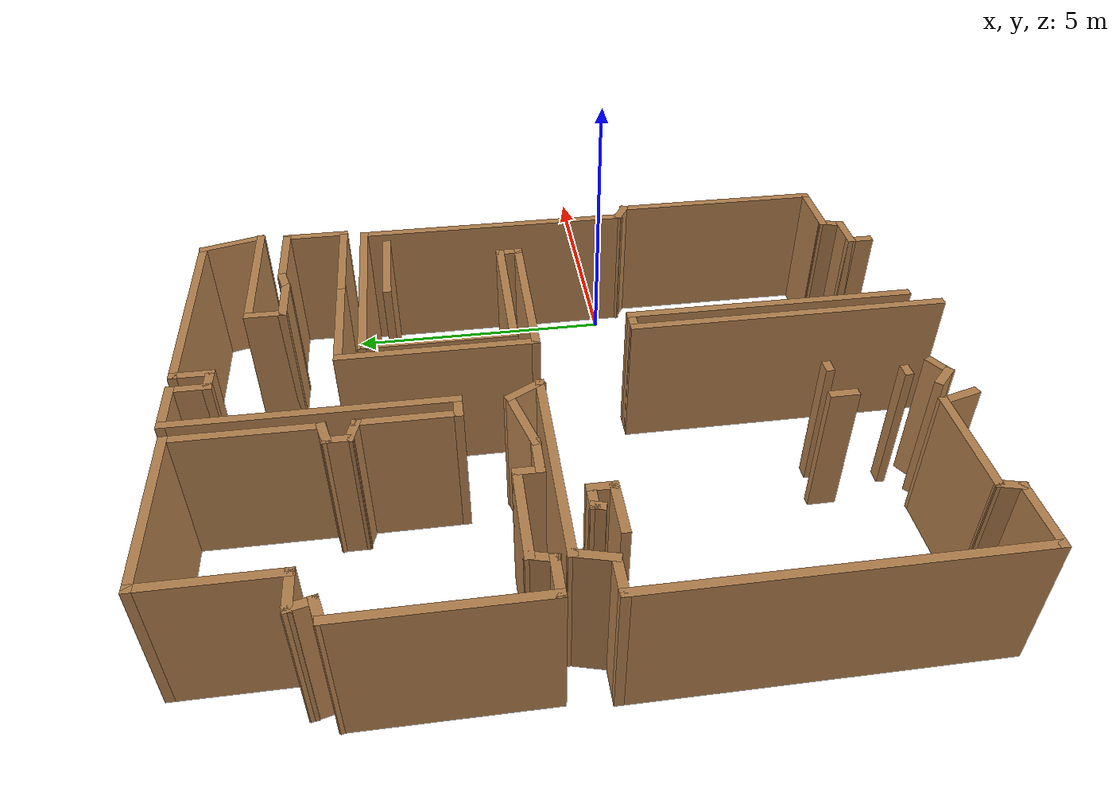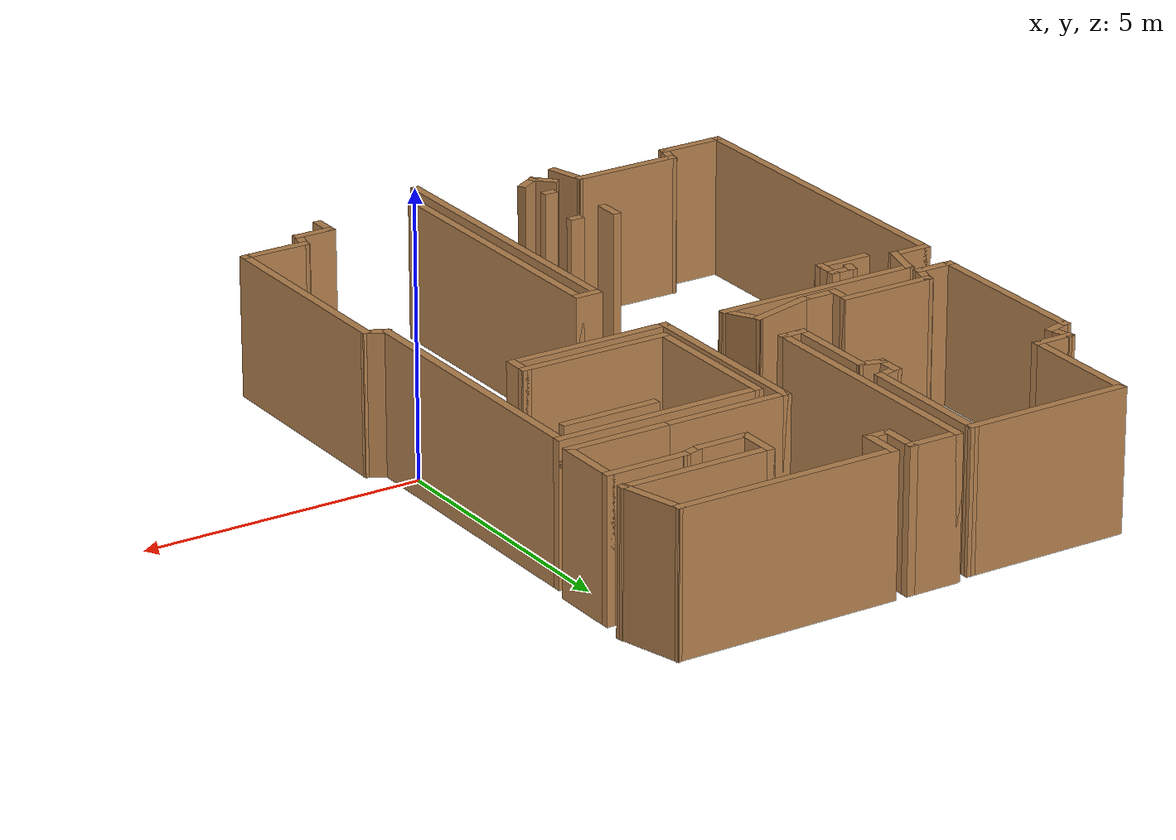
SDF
<sdf version="1.6">
 <model name="map_31">
  <pose>-4.20908 -1.66774 0 0 -0 0</pose>
  <link name="Wall_0">
   <collision name="Wall_0_Collision">
    <geometry><box><size>3 0.15 2.5</size></box></geometry>
    <pose>0 0 1.25 0 -0 0</pose>
   </collision>
   <visual name="Wall_0_Visual">
    <pose>0 0 1.25 0 -0 0</pose>
    <geometry><box><size>3 0.15 2.5</size></box></geometry>
    <material>
     <script><uri>file://media/materials/scripts/gazebo.material</uri><name>Gazebo/Wood</name></script>
     <ambient>1 1 1 1</ambient>
    </material>
    <meta><layer>0</layer></meta>
   </visual>
   <pose>-2.44947 9.31 0 0 -0 3.14159</pose>
  </link>
  <link name="Wall_1">
   <collision name="Wall_1_Collision">
    <geometry><box><size>2.25 0.15 2.5</size></box></geometry>
    <pose>0 0 1.25 0 -0 0</pose>
   </collision>
   <visual name="Wall_1_Visual">
    <pose>0 0 1.25 0 -0 0</pose>
    <geometry><box><size>2.25 0.15 2.5</size></box></geometry>
    <material>
     <script><uri>file://media/materials/scripts/gazebo.material</uri><name>Gazebo/Wood</name></script>
     <ambient>1 1 1 1</ambient>
    </material>
    <meta><layer>0</layer></meta>
   </visual>
   <pose>-3.87447 8.26 0 0 -0 -1.5708</pose>
  </link>
  <link name="Wall_10">
   <collision name="Wall_10_Collision">
    <geometry><box><size>0.75 0.15 2.5</size></box></geometry>
    <pose>0 0 1.25 0 -0 0</pose>
   </collision>
   <visual name="Wall_10_Visual">
    <pose>0 0 1.25 0 -0 0</pose>
    <geometry><box><size>0.75 0.15 2.5</size></box></geometry>
    <material>
     <script><uri>file://media/materials/scripts/gazebo.material</uri><name>Gazebo/Wood</name></script>
     <ambient>1 1 1 1</ambient>
    </material>
    <meta><layer>0</layer></meta>
   </visual>
   <pose>-2.13137 3.66941 0 0 -0 0</pose>
  </link>
  <link name="Wall_100">
   <collision name="Wall_100_Collision">
    <geometry><box><size>3.5 0.15 2.5</size></box></geometry>
    <pose>0 0 1.25 0 -0 0</pose>
   </collision>
   <visual name="Wall_100_Visual">
    <pose>0 0 1.25 0 -0 0</pose>
    <geometry><box><size>3.5 0.15 2.5</size></box></geometry>
    <material>
     <script><uri>file://media/materials/scripts/gazebo.material</uri><name>Gazebo/Wood</name></script>
     <ambient>1 1 1 1</ambient>
    </material>
    <meta><layer>0</layer></meta>
   </visual>
   <pose>0.643586 5.04256 0 0 -0 1.5708</pose>
  </link>
  <link name="Wall_101">
   <collision name="Wall_101_Collision">
    <geometry><box><size>2.25 0.15 2.5</size></box></geometry>
    <pose>0 0 1.25 0 -0 0</pose>
   </collision>
   <visual name="Wall_101_Visual">
    <pose>0 0 1.25 0 -0 0</pose>
    <geometry><box><size>2.25 0.15 2.5</size></box></geometry>
    <material>
     <script><uri>file://media/materials/scripts/gazebo.material</uri><name>Gazebo/Wood</name></script>
     <ambient>1 1 1 1</ambient>
    </material>
    <meta><layer>0</layer></meta>
   </visual>
   <pose>1.69359 6.71756 0 0 -0 0</pose>
  </link>
  <link name="Wall_102">
   <collision name="Wall_102_Collision">
    <geometry><box><size>2 0.15 2.5</size></box></geometry>
    <pose>0 0 1.25 0 -0 0</pose>
   </collision>
   <visual name="Wall_102_Visual">
    <pose>0 0 1.25 0 -0 0</pose>
    <geometry><box><size>2 0.15 2.5</size></box></geometry>
    <material>
     <script><uri>file://media/materials/scripts/gazebo.material</uri><name>Gazebo/Wood</name></script>
     <ambient>1 1 1 1</ambient>
    </material>
    <meta><layer>0</layer></meta>
   </visual>
   <pose>3.66859 6.71756 0 0 -0 0</pose>
  </link>
  <link name="Wall_103">
   <collision name="Wall_103_Collision">
    <geometry><box><size>1.25 0.15 2.5</size></box></geometry>
    <pose>0 0 1.25 0 -0 0</pose>
   </collision>
   <visual name="Wall_103_Visual">
    <pose>0 0 1.25 0 -0 0</pose>
    <geometry><box><size>1.25 0.15 2.5</size></box></geometry>
    <material>
     <script><uri>file://media/materials/scripts/gazebo.material</uri><name>Gazebo/Wood</name></script>
     <ambient>1 1 1 1</ambient>
    </material>
    <meta><layer>0</layer></meta>
   </visual>
   <pose>4.59359 7.26756 0 0 -0 1.5708</pose>
  </link>
  <link name="Wall_104">
   <collision name="Wall_104_Collision">
    <geometry><box><size>1.5 0.15 2.5</size></box></geometry>
    <pose>0 0 1.25 0 -0 0</pose>
   </collision>
   <visual name="Wall_104_Visual">
    <pose>0 0 1.25 0 -0 0</pose>
    <geometry><box><size>1.5 0.15 2.5</size></box></geometry>
    <material>
     <script><uri>file://media/materials/scripts/gazebo.material</uri><name>Gazebo/Wood</name></script>
     <ambient>1 1 1 1</ambient>
    </material>
    <meta><layer>0</layer></meta>
   </visual>
   <pose>3.91859 7.81756 0 0 -0 3.14159</pose>
  </link>
  <link name="Wall_105">
   <collision name="Wall_105_Collision">
    <geometry><box><size>0.5 0.15 2.5</size></box></geometry>
    <pose>0 0 1.25 0 -0 0</pose>
   </collision>
   <visual name="Wall_105_Visual">
    <pose>0 0 1.25 0 -0 0</pose>
    <geometry><box><size>0.5 0.15 2.5</size></box></geometry>
    <material>
     <script><uri>file://media/materials/scripts/gazebo.material</uri><name>Gazebo/Wood</name></script>
     <ambient>1 1 1 1</ambient>
    </material>
    <meta><layer>0</layer></meta>
   </visual>
   <pose>3.07455 7.77226 0 0 -0 -2.87979</pose>
  </link>
  <link name="Wall_106">
   <collision name="Wall_106_Collision">
    <geometry><box><size>1 0.15 2.5</size></box></geometry>
    <pose>0 0 1.25 0 -0 0</pose>
   </collision>
   <visual name="Wall_106_Visual">
    <pose>0 0 1.25 0 -0 0</pose>
    <geometry><box><size>1 0.15 2.5</size></box></geometry>
    <material>
     <script><uri>file://media/materials/scripts/gazebo.material</uri><name>Gazebo/Wood</name></script>
     <ambient>1 1 1 1</ambient>
    </material>
    <meta><layer>0</layer></meta>
   </visual>
   <pose>2.48051 7.72697 0 0 -0 3.14159</pose>
  </link>
  <link name="Wall_107">
   <collision name="Wall_107_Collision">
    <geometry><box><size>0.75 0.15 2.5</size></box></geometry>
    <pose>0 0 1.25 0 -0 0</pose>
   </collision>
   <visual name="Wall_107_Visual">
    <pose>0 0 1.25 0 -0 0</pose>
    <geometry><box><size>0.75 0.15 2.5</size></box></geometry>
    <material>
     <script><uri>file://media/materials/scripts/gazebo.material</uri><name>Gazebo/Wood</name></script>
     <ambient>1 1 1 1</ambient>
    </material>
    <meta><layer>0</layer></meta>
   </visual>
   <pose>2.05551 8.02697 0 0 -0 1.5708</pose>
  </link>
  <link name="Wall_108">
   <collision name="Wall_108_Collision">
    <geometry><box><size>2.75 0.15 2.5</size></box></geometry>
    <pose>0 0 1.25 0 -0 0</pose>
   </collision>
   <visual name="Wall_108_Visual">
    <pose>0 0 1.25 0 -0 0</pose>
    <geometry><box><size>2.75 0.15 2.5</size></box></geometry>
    <material>
     <script><uri>file://media/materials/scripts/gazebo.material</uri><name>Gazebo/Wood</name></script>
     <ambient>1 1 1 1</ambient>
    </material>
    <meta><layer>0</layer></meta>
   </visual>
   <pose>3.35551 8.32697 0 0 -0 0</pose>
  </link>
  <link name="Wall_109">
   <collision name="Wall_109_Collision">
    <geometry><box><size>1.25 0.15 2.5</size></box></geometry>
    <pose>0 0 1.25 0 -0 0</pose>
   </collision>
   <visual name="Wall_109_Visual">
    <pose>0 0 1.25 0 -0 0</pose>
    <geometry><box><size>1.25 0.15 2.5</size></box></geometry>
    <material>
     <script><uri>file://media/materials/scripts/gazebo.material</uri><name>Gazebo/Wood</name></script>
     <ambient>1 1 1 1</ambient>
    </material>
    <meta><layer>0</layer></meta>
   </visual>
   <pose>4.51316 8.85823 0 0 -0 1.8326</pose>
  </link>
  <link name="Wall_11">
   <collision name="Wall_11_Collision">
    <geometry><box><size>1.25 0.15 2.5</size></box></geometry>
    <pose>0 0 1.25 0 -0 0</pose>
   </collision>
   <visual name="Wall_11_Visual">
    <pose>0 0 1.25 0 -0 0</pose>
    <geometry><box><size>1.25 0.15 2.5</size></box></geometry>
    <material>
     <script><uri>file://media/materials/scripts/gazebo.material</uri><name>Gazebo/Wood</name></script>
     <ambient>1 1 1 1</ambient>
    </material>
    <meta><layer>0</layer></meta>
   </visual>
   <pose>-1.30011 3.81176 0 0 -0 0.261799</pose>
  </link>
  <link name="Wall_110">
   <collision name="Wall_110_Collision">
    <geometry><box><size>4 0.15 2.5</size></box></geometry>
    <pose>0 0 1.25 0 -0 0</pose>
   </collision>
   <visual name="Wall_110_Visual">
    <pose>0 0 1.25 0 -0 0</pose>
    <geometry><box><size>4 0.15 2.5</size></box></geometry>
    <material>
     <script><uri>file://media/materials/scripts/gazebo.material</uri><name>Gazebo/Wood</name></script>
     <ambient>1 1 1 1</ambient>
    </material>
    <meta><layer>0</layer></meta>
   </visual>
   <pose>2.44581 9.38949 0 0 -0 3.14159</pose>
  </link>
  <link name="Wall_111">
   <collision name="Wall_111_Collision">
    <geometry><box><size>0.75 0.15 2.5</size></box></geometry>
    <pose>0 0 1.25 0 -0 0</pose>
   </collision>
   <visual name="Wall_111_Visual">
    <pose>0 0 1.25 0 -0 0</pose>
    <geometry><box><size>0.75 0.15 2.5</size></box></geometry>
    <material>
     <script><uri>file://media/materials/scripts/gazebo.material</uri><name>Gazebo/Wood</name></script>
     <ambient>1 1 1 1</ambient>
    </material>
    <meta><layer>0</layer></meta>
   </visual>
   <pose>0.520811 9.08949 0 0 -0 -1.5708</pose>
  </link>
  <link name="Wall_112">
   <collision name="Wall_112_Collision">
    <geometry><box><size>0.5 0.15 2.5</size></box></geometry>
    <pose>0 0 1.25 0 -0 0</pose>
   </collision>
   <visual name="Wall_112_Visual">
    <pose>0 0 1.25 0 -0 0</pose>
    <geometry><box><size>0.5 0.15 2.5</size></box></geometry>
    <material>
     <script><uri>file://media/materials/scripts/gazebo.material</uri><name>Gazebo/Wood</name></script>
     <ambient>1 1 1 1</ambient>
    </material>
    <meta><layer>0</layer></meta>
   </visual>
   <pose>0.345811 8.78949 0 0 -0 3.14159</pose>
  </link>
  <link name="Wall_113">
   <collision name="Wall_113_Collision">
    <geometry><box><size>0.75 0.15 2.5</size></box></geometry>
    <pose>0 0 1.25 0 -0 0</pose>
   </collision>
   <visual name="Wall_113_Visual">
    <pose>0 0 1.25 0 -0 0</pose>
    <geometry><box><size>0.75 0.15 2.5</size></box></geometry>
    <material>
     <script><uri>file://media/materials/scripts/gazebo.material</uri><name>Gazebo/Wood</name></script>
     <ambient>1 1 1 1</ambient>
    </material>
    <meta><layer>0</layer></meta>
   </visual>
   <pose>0.170811 9.08949 0 0 -0 1.5708</pose>
  </link>
  <link name="Wall_116">
   <collision name="Wall_116_Collision">
    <geometry><box><size>1 0.15 2.5</size></box></geometry>
    <pose>0 0 1.25 0 -0 0</pose>
   </collision>
   <visual name="Wall_116_Visual">
    <pose>0 0 1.25 0 -0 0</pose>
    <geometry><box><size>1 0.15 2.5</size></box></geometry>
    <material>
     <script><uri>file://media/materials/scripts/gazebo.material</uri><name>Gazebo/Wood</name></script>
     <ambient>1 1 1 1</ambient>
    </material>
    <meta><layer>0</layer></meta>
   </visual>
   <pose>-0.254189 9.38949 0 0 -0 3.14159</pose>
  </link>
  <link name="Wall_117">
   <collision name="Wall_117_Collision">
    <geometry><box><size>4.75 0.15 2.5</size></box></geometry>
    <pose>0 0 1.25 0 -0 0</pose>
   </collision>
   <visual name="Wall_117_Visual">
    <pose>0 0 1.25 0 -0 0</pose>
    <geometry><box><size>4.75 0.15 2.5</size></box></geometry>
    <material>
     <script><uri>file://media/materials/scripts/gazebo.material</uri><name>Gazebo/Wood</name></script>
     <ambient>1 1 1 1</ambient>
    </material>
    <meta><layer>0</layer></meta>
   </visual>
   <pose>-0.679188 7.08949 0 0 -0 -1.5708</pose>
  </link>
  <link name="Wall_12">
   <collision name="Wall_12_Collision">
    <geometry><box><size>0.75 0.15 2.5</size></box></geometry>
    <pose>0 0 1.25 0 -0 0</pose>
   </collision>
   <visual name="Wall_12_Visual">
    <pose>0 0 1.25 0 -0 0</pose>
    <geometry><box><size>0.75 0.15 2.5</size></box></geometry>
    <material>
     <script><uri>file://media/materials/scripts/gazebo.material</uri><name>Gazebo/Wood</name></script>
     <ambient>1 1 1 1</ambient>
    </material>
    <meta><layer>0</layer></meta>
   </visual>
   <pose>-0.618855 3.6943 0 0 -0 -1.0472</pose>
  </link>
  <link name="Wall_120">
   <collision name="Wall_120_Collision">
    <geometry><box><size>0.5 0.15 2.5</size></box></geometry>
    <pose>0 0 1.25 0 -0 0</pose>
   </collision>
   <visual name="Wall_120_Visual">
    <pose>0 0 1.25 0 -0 0</pose>
    <geometry><box><size>0.5 0.15 2.5</size></box></geometry>
    <material>
     <script><uri>file://media/materials/scripts/gazebo.material</uri><name>Gazebo/Wood</name></script>
     <ambient>1 1 1 1</ambient>
    </material>
    <meta><layer>0</layer></meta>
   </visual>
   <pose>-0.854189 4.78949 0 0 -0 3.14159</pose>
  </link>
  <link name="Wall_124">
   <collision name="Wall_124_Collision">
    <geometry><box><size>1.75 0.15 2.5</size></box></geometry>
    <pose>0 0 1.25 0 -0 0</pose>
   </collision>
   <visual name="Wall_124_Visual">
    <pose>0 0 1.25 0 -0 0</pose>
    <geometry><box><size>1.75 0.15 2.5</size></box></geometry>
    <material>
     <script><uri>file://media/materials/scripts/gazebo.material</uri><name>Gazebo/Wood</name></script>
     <ambient>1 1 1 1</ambient>
    </material>
    <meta><layer>0</layer></meta>
   </visual>
   <pose>-1.02919 5.58949 0 0 -0 1.5708</pose>
  </link>
  <link name="Wall_125">
   <collision name="Wall_125_Collision">
    <geometry><box><size>0.5 0.15 2.5</size></box></geometry>
    <pose>0 0 1.25 0 -0 0</pose>
   </collision>
   <visual name="Wall_125_Visual">
    <pose>0 0 1.25 0 -0 0</pose>
    <geometry><box><size>0.5 0.15 2.5</size></box></geometry>
    <material>
     <script><uri>file://media/materials/scripts/gazebo.material</uri><name>Gazebo/Wood</name></script>
     <ambient>1 1 1 1</ambient>
    </material>
    <meta><layer>0</layer></meta>
   </visual>
   <pose>-1.19823 6.43478 0 0 -0 2.87979</pose>
  </link>
  <link name="Wall_126">
   <collision name="Wall_126_Collision">
    <geometry><box><size>0.5 0.15 2.5</size></box></geometry>
    <pose>0 0 1.25 0 -0 0</pose>
   </collision>
   <visual name="Wall_126_Visual">
    <pose>0 0 1.25 0 -0 0</pose>
    <geometry><box><size>0.5 0.15 2.5</size></box></geometry>
    <material>
     <script><uri>file://media/materials/scripts/gazebo.material</uri><name>Gazebo/Wood</name></script>
     <ambient>1 1 1 1</ambient>
    </material>
    <meta><layer>0</layer></meta>
   </visual>
   <pose>-1.36726 6.65508 0 0 -0 1.5708</pose>
  </link>
  <link name="Wall_127">
   <collision name="Wall_127_Collision">
    <geometry><box><size>0.5 0.15 2.5</size></box></geometry>
    <pose>0 0 1.25 0 -0 0</pose>
   </collision>
   <visual name="Wall_127_Visual">
    <pose>0 0 1.25 0 -0 0</pose>
    <geometry><box><size>0.5 0.15 2.5</size></box></geometry>
    <material>
     <script><uri>file://media/materials/scripts/gazebo.material</uri><name>Gazebo/Wood</name></script>
     <ambient>1 1 1 1</ambient>
    </material>
    <meta><layer>0</layer></meta>
   </visual>
   <pose>-1.19823 6.87537 0 0 -0 0.261799</pose>
  </link>
  <link name="Wall_128">
   <collision name="Wall_128_Collision">
    <geometry><box><size>2.53934 0.15 2.5</size></box></geometry>
    <pose>0 0 1.25 0 -0 0</pose>
   </collision>
   <visual name="Wall_128_Visual">
    <pose>0 0 1.25 0 -0 0</pose>
    <geometry><box><size>2.53934 0.15 2.5</size></box></geometry>
    <material>
     <script><uri>file://media/materials/scripts/gazebo.material</uri><name>Gazebo/Wood</name></script>
     <ambient>1 1 1 1</ambient>
    </material>
    <meta><layer>0</layer></meta>
   </visual>
   <pose>-1.02683 8.11533 0 0 -0 1.56882</pose>
  </link>
  <link name="Wall_13">
   <collision name="Wall_13_Collision">
    <geometry><box><size>3.75 0.15 2.5</size></box></geometry>
    <pose>0 0 1.25 0 -0 0</pose>
   </collision>
   <visual name="Wall_13_Visual">
    <pose>0 0 1.25 0 -0 0</pose>
    <geometry><box><size>3.75 0.15 2.5</size></box></geometry>
    <material>
     <script><uri>file://media/materials/scripts/gazebo.material</uri><name>Gazebo/Wood</name></script>
     <ambient>1 1 1 1</ambient>
    </material>
    <meta><layer>0</layer></meta>
   </visual>
   <pose>-2.26885 3.4345 0 0 -0 3.14159</pose>
  </link>
  <link name="Wall_130">
   <collision name="Wall_130_Collision">
    <geometry><box><size>1.75 0.15 2.5</size></box></geometry>
    <pose>0 0 1.25 0 -0 0</pose>
   </collision>
   <visual name="Wall_130_Visual">
    <pose>0 0 1.25 0 -0 0</pose>
    <geometry><box><size>1.75 0.15 2.5</size></box></geometry>
    <material>
     <script><uri>file://media/materials/scripts/gazebo.material</uri><name>Gazebo/Wood</name></script>
     <ambient>1 1 1 1</ambient>
    </material>
    <meta><layer>0</layer></meta>
   </visual>
   <pose>3.32399 5.88389 0 0 -0 0</pose>
  </link>
  <link name="Wall_132">
   <collision name="Wall_132_Collision">
    <geometry><box><size>0.5 0.15 2.5</size></box></geometry>
    <pose>0 0 1.25 0 -0 0</pose>
   </collision>
   <visual name="Wall_132_Visual">
    <pose>0 0 1.25 0 -0 0</pose>
    <geometry><box><size>0.5 0.15 2.5</size></box></geometry>
    <material>
     <script><uri>file://media/materials/scripts/gazebo.material</uri><name>Gazebo/Wood</name></script>
     <ambient>1 1 1 1</ambient>
    </material>
    <meta><layer>0</layer></meta>
   </visual>
   <pose>-1.39156 -1.38804 0 0 -0 -1.5708</pose>
  </link>
  <link name="Wall_134">
   <collision name="Wall_134_Collision">
    <geometry><box><size>0.25 0.15 2.5</size></box></geometry>
    <pose>0 0 1.25 0 -0 0</pose>
   </collision>
   <visual name="Wall_134_Visual">
    <pose>0 0 1.25 0 -0 0</pose>
    <geometry><box><size>0.25 0.15 2.5</size></box></geometry>
    <material>
     <script><uri>file://media/materials/scripts/gazebo.material</uri><name>Gazebo/Wood</name></script>
     <ambient>1 1 1 1</ambient>
    </material>
    <meta><layer>0</layer></meta>
   </visual>
   <pose>-0.699161 -1.36599 0 0 -0 0</pose>
  </link>
  <link name="Wall_136">
   <collision name="Wall_136_Collision">
    <geometry><box><size>0.25 0.15 2.5</size></box></geometry>
    <pose>0 0 1.25 0 -0 0</pose>
   </collision>
   <visual name="Wall_136_Visual">
    <pose>0 0 1.25 0 -0 0</pose>
    <geometry><box><size>0.25 0.15 2.5</size></box></geometry>
    <material>
     <script><uri>file://media/materials/scripts/gazebo.material</uri><name>Gazebo/Wood</name></script>
     <ambient>1 1 1 1</ambient>
    </material>
    <meta><layer>0</layer></meta>
   </visual>
   <pose>-0.974473 -2.62019 0 0 -0 0</pose>
  </link>
  <link name="Wall_138">
   <collision name="Wall_138_Collision">
    <geometry><box><size>0.5 0.15 2.5</size></box></geometry>
    <pose>0 0 1.25 0 -0 0</pose>
   </collision>
   <visual name="Wall_138_Visual">
    <pose>0 0 1.25 0 -0 0</pose>
    <geometry><box><size>0.5 0.15 2.5</size></box></geometry>
    <material>
     <script><uri>file://media/materials/scripts/gazebo.material</uri><name>Gazebo/Wood</name></script>
     <ambient>1 1 1 1</ambient>
    </material>
    <meta><layer>0</layer></meta>
   </visual>
   <pose>-1.20663 -3.1722 0 0 -0 -0.785398</pose>
  </link>
  <link name="Wall_139">
   <collision name="Wall_139_Collision">
    <geometry><box><size>0.5 0.15 2.5</size></box></geometry>
    <pose>0 0 1.25 0 -0 0</pose>
   </collision>
   <visual name="Wall_139_Visual">
    <pose>0 0 1.25 0 -0 0</pose>
    <geometry><box><size>0.5 0.15 2.5</size></box></geometry>
    <material>
     <script><uri>file://media/materials/scripts/gazebo.material</uri><name>Gazebo/Wood</name></script>
     <ambient>1 1 1 1</ambient>
    </material>
    <meta><layer>0</layer></meta>
   </visual>
   <pose>-0.931333 -3.20844 0 0 -0 0.523599</pose>
  </link>
  <link name="Wall_14">
   <collision name="Wall_14_Collision">
    <geometry><box><size>0.75 0.15 2.5</size></box></geometry>
    <pose>0 0 1.25 0 -0 0</pose>
   </collision>
   <visual name="Wall_14_Visual">
    <pose>0 0 1.25 0 -0 0</pose>
    <geometry><box><size>0.75 0.15 2.5</size></box></geometry>
    <material>
     <script><uri>file://media/materials/scripts/gazebo.material</uri><name>Gazebo/Wood</name></script>
     <ambient>1 1 1 1</ambient>
    </material>
    <meta><layer>0</layer></meta>
   </visual>
   <pose>-4.1465 3.14472 0 0 -0 -1.8326</pose>
  </link>
  <link name="Wall_141">
   <collision name="Wall_141_Collision">
    <geometry><box><size>1 0.15 2.5</size></box></geometry>
    <pose>0 0 1.25 0 -0 0</pose>
   </collision>
   <visual name="Wall_141_Visual">
    <pose>0 0 1.25 0 -0 0</pose>
    <geometry><box><size>1 0.15 2.5</size></box></geometry>
    <material>
     <script><uri>file://media/materials/scripts/gazebo.material</uri><name>Gazebo/Wood</name></script>
     <ambient>1 1 1 1</ambient>
    </material>
    <meta><layer>0</layer></meta>
   </visual>
   <pose>-3.322 2.64133 0 0 -0 0</pose>
  </link>
  <link name="Wall_142">
   <collision name="Wall_142_Collision">
    <geometry><box><size>0.5 0.15 2.5</size></box></geometry>
    <pose>0 0 1.25 0 -0 0</pose>
   </collision>
   <visual name="Wall_142_Visual">
    <pose>0 0 1.25 0 -0 0</pose>
    <geometry><box><size>0.5 0.15 2.5</size></box></geometry>
    <material>
     <script><uri>file://media/materials/scripts/gazebo.material</uri><name>Gazebo/Wood</name></script>
     <ambient>1 1 1 1</ambient>
    </material>
    <meta><layer>0</layer></meta>
   </visual>
   <pose>-2.897 2.81633 0 0 -0 1.5708</pose>
  </link>
  <link name="Wall_143">
   <collision name="Wall_143_Collision">
    <geometry><box><size>0.5 0.15 2.5</size></box></geometry>
    <pose>0 0 1.25 0 -0 0</pose>
   </collision>
   <visual name="Wall_143_Visual">
    <pose>0 0 1.25 0 -0 0</pose>
    <geometry><box><size>0.5 0.15 2.5</size></box></geometry>
    <material>
     <script><uri>file://media/materials/scripts/gazebo.material</uri><name>Gazebo/Wood</name></script>
     <ambient>1 1 1 1</ambient>
    </material>
    <meta><layer>0</layer></meta>
   </visual>
   <pose>-3.072 2.99133 0 0 -0 3.14159</pose>
  </link>
  <link name="Wall_144">
   <collision name="Wall_144_Collision">
    <geometry><box><size>0.25 0.15 2.5</size></box></geometry>
    <pose>0 0 1.25 0 -0 0</pose>
   </collision>
   <visual name="Wall_144_Visual">
    <pose>0 0 1.25 0 -0 0</pose>
    <geometry><box><size>0.25 0.15 2.5</size></box></geometry>
    <material>
     <script><uri>file://media/materials/scripts/gazebo.material</uri><name>Gazebo/Wood</name></script>
     <ambient>1 1 1 1</ambient>
    </material>
    <meta><layer>0</layer></meta>
   </visual>
   <pose>-3.25994 2.94303 0 0 -0 -1.8326</pose>
  </link>
  <link name="Wall_17">
   <collision name="Wall_17_Collision">
    <geometry><box><size>0.75 0.15 2.5</size></box></geometry>
    <pose>0 0 1.25 0 -0 0</pose>
   </collision>
   <visual name="Wall_17_Visual">
    <pose>0 0 1.25 0 -0 0</pose>
    <geometry><box><size>0.75 0.15 2.5</size></box></geometry>
    <material>
     <script><uri>file://media/materials/scripts/gazebo.material</uri><name>Gazebo/Wood</name></script>
     <ambient>1 1 1 1</ambient>
    </material>
    <meta><layer>0</layer></meta>
   </visual>
   <pose>-4.52415 2.85494 0 0 -0 3.14159</pose>
  </link>
  <link name="Wall_18">
   <collision name="Wall_18_Collision">
    <geometry><box><size>6.25 0.15 2.5</size></box></geometry>
    <pose>0 0 1.25 0 -0 0</pose>
   </collision>
   <visual name="Wall_18_Visual">
    <pose>0 0 1.25 0 -0 0</pose>
    <geometry><box><size>6.25 0.15 2.5</size></box></geometry>
    <material>
     <script><uri>file://media/materials/scripts/gazebo.material</uri><name>Gazebo/Wood</name></script>
     <ambient>1 1 1 1</ambient>
    </material>
    <meta><layer>0</layer></meta>
   </visual>
   <pose>-4.82415 -0.195058 0 0 -0 -1.5708</pose>
  </link>
  <link name="Wall_19">
   <collision name="Wall_19_Collision">
    <geometry><box><size>1.25 0.15 2.5</size></box></geometry>
    <pose>0 0 1.25 0 -0 0</pose>
   </collision>
   <visual name="Wall_19_Visual">
    <pose>0 0 1.25 0 -0 0</pose>
    <geometry><box><size>1.25 0.15 2.5</size></box></geometry>
    <material>
     <script><uri>file://media/materials/scripts/gazebo.material</uri><name>Gazebo/Wood</name></script>
     <ambient>1 1 1 1</ambient>
    </material>
    <meta><layer>0</layer></meta>
   </visual>
   <pose>-4.27415 -3.24506 0 0 -0 0</pose>
  </link>
  <link name="Wall_2">
   <collision name="Wall_2_Collision">
    <geometry><box><size>0.75 0.15 2.5</size></box></geometry>
    <pose>0 0 1.25 0 -0 0</pose>
   </collision>
   <visual name="Wall_2_Visual">
    <pose>0 0 1.25 0 -0 0</pose>
    <geometry><box><size>0.75 0.15 2.5</size></box></geometry>
    <material>
     <script><uri>file://media/materials/scripts/gazebo.material</uri><name>Gazebo/Wood</name></script>
     <ambient>1 1 1 1</ambient>
    </material>
    <meta><layer>0</layer></meta>
   </visual>
   <pose>-4.17447 7.21 0 0 -0 3.14159</pose>
  </link>
  <link name="Wall_20">
   <collision name="Wall_20_Collision">
    <geometry><box><size>0.5 0.15 2.5</size></box></geometry>
    <pose>0 0 1.25 0 -0 0</pose>
   </collision>
   <visual name="Wall_20_Visual">
    <pose>0 0 1.25 0 -0 0</pose>
    <geometry><box><size>0.5 0.15 2.5</size></box></geometry>
    <material>
     <script><uri>file://media/materials/scripts/gazebo.material</uri><name>Gazebo/Wood</name></script>
     <ambient>1 1 1 1</ambient>
    </material>
    <meta><layer>0</layer></meta>
   </visual>
   <pose>-3.67885 -3.07602 0 0 -0 1.309</pose>
  </link>
  <link name="Wall_21">
   <collision name="Wall_21_Collision">
    <geometry><box><size>2 0.15 2.5</size></box></geometry>
    <pose>0 0 1.25 0 -0 0</pose>
   </collision>
   <visual name="Wall_21_Visual">
    <pose>0 0 1.25 0 -0 0</pose>
    <geometry><box><size>2 0.15 2.5</size></box></geometry>
    <material>
     <script><uri>file://media/materials/scripts/gazebo.material</uri><name>Gazebo/Wood</name></script>
     <ambient>1 1 1 1</ambient>
    </material>
    <meta><layer>0</layer></meta>
   </visual>
   <pose>-2.70856 -2.90698 0 0 -0 0</pose>
  </link>
  <link name="Wall_22">
   <collision name="Wall_22_Collision">
    <geometry><box><size>0.75 0.15 2.5</size></box></geometry>
    <pose>0 0 1.25 0 -0 0</pose>
   </collision>
   <visual name="Wall_22_Visual">
    <pose>0 0 1.25 0 -0 0</pose>
    <geometry><box><size>0.75 0.15 2.5</size></box></geometry>
    <material>
     <script><uri>file://media/materials/scripts/gazebo.material</uri><name>Gazebo/Wood</name></script>
     <ambient>1 1 1 1</ambient>
    </material>
    <meta><layer>0</layer></meta>
   </visual>
   <pose>-1.70591 -3.19676 0 0 -0 -1.309</pose>
  </link>
  <link name="Wall_3">
   <collision name="Wall_3_Collision">
    <geometry><box><size>0.5 0.15 2.5</size></box></geometry>
    <pose>0 0 1.25 0 -0 0</pose>
   </collision>
   <visual name="Wall_3_Visual">
    <pose>0 0 1.25 0 -0 0</pose>
    <geometry><box><size>0.5 0.15 2.5</size></box></geometry>
    <material>
     <script><uri>file://media/materials/scripts/gazebo.material</uri><name>Gazebo/Wood</name></script>
     <ambient>1 1 1 1</ambient>
    </material>
    <meta><layer>0</layer></meta>
   </visual>
   <pose>-4.42918 7.04096 0 0 -0 -1.309</pose>
  </link>
  <link name="Wall_4">
   <collision name="Wall_4_Collision">
    <geometry><box><size>0.5 0.15 2.5</size></box></geometry>
    <pose>0 0 1.25 0 -0 0</pose>
   </collision>
   <visual name="Wall_4_Visual">
    <pose>0 0 1.25 0 -0 0</pose>
    <geometry><box><size>0.5 0.15 2.5</size></box></geometry>
    <material>
     <script><uri>file://media/materials/scripts/gazebo.material</uri><name>Gazebo/Wood</name></script>
     <ambient>1 1 1 1</ambient>
    </material>
    <meta><layer>0</layer></meta>
   </visual>
   <pose>-4.55292 6.82663 0 0 -0 -2.87979</pose>
  </link>
  <link name="Wall_5">
   <collision name="Wall_5_Collision">
    <geometry><box><size>3.25 0.15 2.5</size></box></geometry>
    <pose>0 0 1.25 0 -0 0</pose>
   </collision>
   <visual name="Wall_5_Visual">
    <pose>0 0 1.25 0 -0 0</pose>
    <geometry><box><size>3.25 0.15 2.5</size></box></geometry>
    <material>
     <script><uri>file://media/materials/scripts/gazebo.material</uri><name>Gazebo/Wood</name></script>
     <ambient>1 1 1 1</ambient>
    </material>
    <meta><layer>0</layer></meta>
   </visual>
   <pose>-4.72196 5.23134 0 0 -0 -1.5708</pose>
  </link>
  <link name="Wall_6">
   <collision name="Wall_6_Collision">
    <geometry><box><size>0.75 0.15 2.5</size></box></geometry>
    <pose>0 0 1.25 0 -0 0</pose>
   </collision>
   <visual name="Wall_6_Visual">
    <pose>0 0 1.25 0 -0 0</pose>
    <geometry><box><size>0.75 0.15 2.5</size></box></geometry>
    <material>
     <script><uri>file://media/materials/scripts/gazebo.material</uri><name>Gazebo/Wood</name></script>
     <ambient>1 1 1 1</ambient>
    </material>
    <meta><layer>0</layer></meta>
   </visual>
   <pose>-4.42196 3.68134 0 0 -0 0</pose>
  </link>
  <link name="Wall_7">
   <collision name="Wall_7_Collision">
    <geometry><box><size>0.5 0.15 2.5</size></box></geometry>
    <pose>0 0 1.25 0 -0 0</pose>
   </collision>
   <visual name="Wall_7_Visual">
    <pose>0 0 1.25 0 -0 0</pose>
    <geometry><box><size>0.5 0.15 2.5</size></box></geometry>
    <material>
     <script><uri>file://media/materials/scripts/gazebo.material</uri><name>Gazebo/Wood</name></script>
     <ambient>1 1 1 1</ambient>
    </material>
    <meta><layer>0</layer></meta>
   </visual>
   <pose>-4.07667 3.85038 0 0 -0 1.309</pose>
  </link>
  <link name="Wall_8">
   <collision name="Wall_8_Collision">
    <geometry><box><size>1.75 0.15 2.5</size></box></geometry>
    <pose>0 0 1.25 0 -0 0</pose>
   </collision>
   <visual name="Wall_8_Visual">
    <pose>0 0 1.25 0 -0 0</pose>
    <geometry><box><size>1.75 0.15 2.5</size></box></geometry>
    <material>
     <script><uri>file://media/materials/scripts/gazebo.material</uri><name>Gazebo/Wood</name></script>
     <ambient>1 1 1 1</ambient>
    </material>
    <meta><layer>0</layer></meta>
   </visual>
   <pose>-3.23137 4.01941 0 0 -0 0</pose>
  </link>
  <link name="Wall_82">
   <collision name="Wall_82_Collision">
    <geometry><box><size>5.75 0.15 2.5</size></box></geometry>
    <pose>0 0 1.25 0 -0 0</pose>
   </collision>
   <visual name="Wall_82_Visual">
    <pose>0 0 1.25 0 -0 0</pose>
    <geometry><box><size>5.75 0.15 2.5</size></box></geometry>
    <material>
     <script><uri>file://media/materials/scripts/gazebo.material</uri><name>Gazebo/Wood</name></script>
     <ambient>1 1 1 1</ambient>
    </material>
    <meta><layer>0</layer></meta>
   </visual>
   <pose>0.806109 -1.19552 0 0 -0 1.5708</pose>
  </link>
  <link name="Wall_83">
   <collision name="Wall_83_Collision">
    <geometry><box><size>0.5 0.15 2.5</size></box></geometry>
    <pose>0 0 1.25 0 -0 0</pose>
   </collision>
   <visual name="Wall_83_Visual">
    <pose>0 0 1.25 0 -0 0</pose>
    <geometry><box><size>0.5 0.15 2.5</size></box></geometry>
    <material>
     <script><uri>file://media/materials/scripts/gazebo.material</uri><name>Gazebo/Wood</name></script>
     <ambient>1 1 1 1</ambient>
    </material>
    <meta><layer>0</layer></meta>
   </visual>
   <pose>0.981109 1.60448 0 0 -0 0</pose>
  </link>
  <link name="Wall_86">
   <collision name="Wall_86_Collision">
    <geometry><box><size>5.25 0.15 2.5</size></box></geometry>
    <pose>0 0 1.25 0 -0 0</pose>
   </collision>
   <visual name="Wall_86_Visual">
    <pose>0 0 1.25 0 -0 0</pose>
    <geometry><box><size>5.25 0.15 2.5</size></box></geometry>
    <material>
     <script><uri>file://media/materials/scripts/gazebo.material</uri><name>Gazebo/Wood</name></script>
     <ambient>1 1 1 1</ambient>
    </material>
    <meta><layer>0</layer></meta>
   </visual>
   <pose>1.15611 -0.945518 0 0 -0 -1.5708</pose>
  </link>
  <link name="Wall_88">
   <collision name="Wall_88_Collision">
    <geometry><box><size>0.5 0.15 2.5</size></box></geometry>
    <pose>0 0 1.25 0 -0 0</pose>
   </collision>
   <visual name="Wall_88_Visual">
    <pose>0 0 1.25 0 -0 0</pose>
    <geometry><box><size>0.5 0.15 2.5</size></box></geometry>
    <material>
     <script><uri>file://media/materials/scripts/gazebo.material</uri><name>Gazebo/Wood</name></script>
     <ambient>1 1 1 1</ambient>
    </material>
    <meta><layer>0</layer></meta>
   </visual>
   <pose>3.00611 -3.32052 0 0 -0 1.5708</pose>
  </link>
  <link name="Wall_89">
   <collision name="Wall_89_Collision">
    <geometry><box><size>0.75 0.15 2.5</size></box></geometry>
    <pose>0 0 1.25 0 -0 0</pose>
   </collision>
   <visual name="Wall_89_Visual">
    <pose>0 0 1.25 0 -0 0</pose>
    <geometry><box><size>0.75 0.15 2.5</size></box></geometry>
    <material>
     <script><uri>file://media/materials/scripts/gazebo.material</uri><name>Gazebo/Wood</name></script>
     <ambient>1 1 1 1</ambient>
    </material>
    <meta><layer>0</layer></meta>
   </visual>
   <pose>3.30611 -3.14552 0 0 -0 0</pose>
  </link>
  <link name="Wall_9">
   <collision name="Wall_9_Collision">
    <geometry><box><size>0.5 0.15 2.5</size></box></geometry>
    <pose>0 0 1.25 0 -0 0</pose>
   </collision>
   <visual name="Wall_9_Visual">
    <pose>0 0 1.25 0 -0 0</pose>
    <geometry><box><size>0.5 0.15 2.5</size></box></geometry>
    <material>
     <script><uri>file://media/materials/scripts/gazebo.material</uri><name>Gazebo/Wood</name></script>
     <ambient>1 1 1 1</ambient>
    </material>
    <meta><layer>0</layer></meta>
   </visual>
   <pose>-2.43137 3.84441 0 0 -0 -1.5708</pose>
  </link>
  <link name="Wall_90">
   <collision name="Wall_90_Collision">
    <geometry><box><size>0.5 0.15 2.5</size></box></geometry>
    <pose>0 0 1.25 0 -0 0</pose>
   </collision>
   <visual name="Wall_90_Visual">
    <pose>0 0 1.25 0 -0 0</pose>
    <geometry><box><size>0.5 0.15 2.5</size></box></geometry>
    <material>
     <script><uri>file://media/materials/scripts/gazebo.material</uri><name>Gazebo/Wood</name></script>
     <ambient>1 1 1 1</ambient>
    </material>
    <meta><layer>0</layer></meta>
   </visual>
   <pose>3.6514 -2.97648 0 0 -0 1.309</pose>
  </link>
  <link name="Wall_91">
   <collision name="Wall_91_Collision">
    <geometry><box><size>1.25 0.15 2.5</size></box></geometry>
    <pose>0 0 1.25 0 -0 0</pose>
   </collision>
   <visual name="Wall_91_Visual">
    <pose>0 0 1.25 0 -0 0</pose>
    <geometry><box><size>1.25 0.15 2.5</size></box></geometry>
    <material>
     <script><uri>file://media/materials/scripts/gazebo.material</uri><name>Gazebo/Wood</name></script>
     <ambient>1 1 1 1</ambient>
    </material>
    <meta><layer>0</layer></meta>
   </visual>
   <pose>4.24669 -2.80744 0 0 -0 0</pose>
  </link>
  <link name="Wall_92">
   <collision name="Wall_92_Collision">
    <geometry><box><size>4 0.15 2.5</size></box></geometry>
    <pose>0 0 1.25 0 -0 0</pose>
   </collision>
   <visual name="Wall_92_Visual">
    <pose>0 0 1.25 0 -0 0</pose>
    <geometry><box><size>4 0.15 2.5</size></box></geometry>
    <material>
     <script><uri>file://media/materials/scripts/gazebo.material</uri><name>Gazebo/Wood</name></script>
     <ambient>1 1 1 1</ambient>
    </material>
    <meta><layer>0</layer></meta>
   </visual>
   <pose>4.79669 -0.882443 0 0 -0 1.5708</pose>
  </link>
  <link name="Wall_93">
   <collision name="Wall_93_Collision">
    <geometry><box><size>0.5 0.15 2.5</size></box></geometry>
    <pose>0 0 1.25 0 -0 0</pose>
   </collision>
   <visual name="Wall_93_Visual">
    <pose>0 0 1.25 0 -0 0</pose>
    <geometry><box><size>0.5 0.15 2.5</size></box></geometry>
    <material>
     <script><uri>file://media/materials/scripts/gazebo.material</uri><name>Gazebo/Wood</name></script>
     <ambient>1 1 1 1</ambient>
    </material>
    <meta><layer>0</layer></meta>
   </visual>
   <pose>4.64514 1.13006 0 0 -0 2.61799</pose>
  </link>
  <link name="Wall_94">
   <collision name="Wall_94_Collision">
    <geometry><box><size>5.25 0.15 2.5</size></box></geometry>
    <pose>0 0 1.25 0 -0 0</pose>
   </collision>
   <visual name="Wall_94_Visual">
    <pose>0 0 1.25 0 -0 0</pose>
    <geometry><box><size>5.25 0.15 2.5</size></box></geometry>
    <material>
     <script><uri>file://media/materials/scripts/gazebo.material</uri><name>Gazebo/Wood</name></script>
     <ambient>1 1 1 1</ambient>
    </material>
    <meta><layer>0</layer></meta>
   </visual>
   <pose>4.49359 3.76756 0 0 -0 1.5708</pose>
  </link>
  <link name="Wall_95">
   <collision name="Wall_95_Collision">
    <geometry><box><size>3.75 0.15 2.5</size></box></geometry>
    <pose>0 0 1.25 0 -0 0</pose>
   </collision>
   <visual name="Wall_95_Visual">
    <pose>0 0 1.25 0 -0 0</pose>
    <geometry><box><size>3.75 0.15 2.5</size></box></geometry>
    <material>
     <script><uri>file://media/materials/scripts/gazebo.material</uri><name>Gazebo/Wood</name></script>
     <ambient>1 1 1 1</ambient>
    </material>
    <meta><layer>0</layer></meta>
   </visual>
   <pose>2.69359 6.31756 0 0 -0 3.14159</pose>
  </link>
  <link name="Wall_96">
   <collision name="Wall_96_Collision">
    <geometry><box><size>2.75 0.15 2.5</size></box></geometry>
    <pose>0 0 1.25 0 -0 0</pose>
   </collision>
   <visual name="Wall_96_Visual">
    <pose>0 0 1.25 0 -0 0</pose>
    <geometry><box><size>2.75 0.15 2.5</size></box></geometry>
    <material>
     <script><uri>file://media/materials/scripts/gazebo.material</uri><name>Gazebo/Wood</name></script>
     <ambient>1 1 1 1</ambient>
    </material>
    <meta><layer>0</layer></meta>
   </visual>
   <pose>0.893586 5.01756 0 0 -0 -1.5708</pose>
  </link>
  <link name="Wall_97">
   <collision name="Wall_97_Collision">
    <geometry><box><size>2.75 0.15 2.5</size></box></geometry>
    <pose>0 0 1.25 0 -0 0</pose>
   </collision>
   <visual name="Wall_97_Visual">
    <pose>0 0 1.25 0 -0 0</pose>
    <geometry><box><size>2.75 0.15 2.5</size></box></geometry>
    <material>
     <script><uri>file://media/materials/scripts/gazebo.material</uri><name>Gazebo/Wood</name></script>
     <ambient>1 1 1 1</ambient>
    </material>
    <meta><layer>0</layer></meta>
   </visual>
   <pose>2.19359 3.71756 0 0 -0 0</pose>
  </link>
  <link name="Wall_98">
   <collision name="Wall_98_Collision">
    <geometry><box><size>0.5 0.15 2.5</size></box></geometry>
    <pose>0 0 1.25 0 -0 0</pose>
   </collision>
   <visual name="Wall_98_Visual">
    <pose>0 0 1.25 0 -0 0</pose>
    <geometry><box><size>0.5 0.15 2.5</size></box></geometry>
    <material>
     <script><uri>file://media/materials/scripts/gazebo.material</uri><name>Gazebo/Wood</name></script>
     <ambient>1 1 1 1</ambient>
    </material>
    <meta><layer>0</layer></meta>
   </visual>
   <pose>3.49359 3.54256 0 0 -0 -1.5708</pose>
  </link>
  <link name="Wall_99">
   <collision name="Wall_99_Collision">
    <geometry><box><size>3 0.15 2.5</size></box></geometry>
    <pose>0 0 1.25 0 -0 0</pose>
   </collision>
   <visual name="Wall_99_Visual">
    <pose>0 0 1.25 0 -0 0</pose>
    <geometry><box><size>3 0.15 2.5</size></box></geometry>
    <material>
     <script><uri>file://media/materials/scripts/gazebo.material</uri><name>Gazebo/Wood</name></script>
     <ambient>1 1 1 1</ambient>
    </material>
    <meta><layer>0</layer></meta>
   </visual>
   <pose>2.06859 3.36756 0 0 -0 3.14159</pose>
  </link>
  <static>1</static>
 </model>
</sdf>
